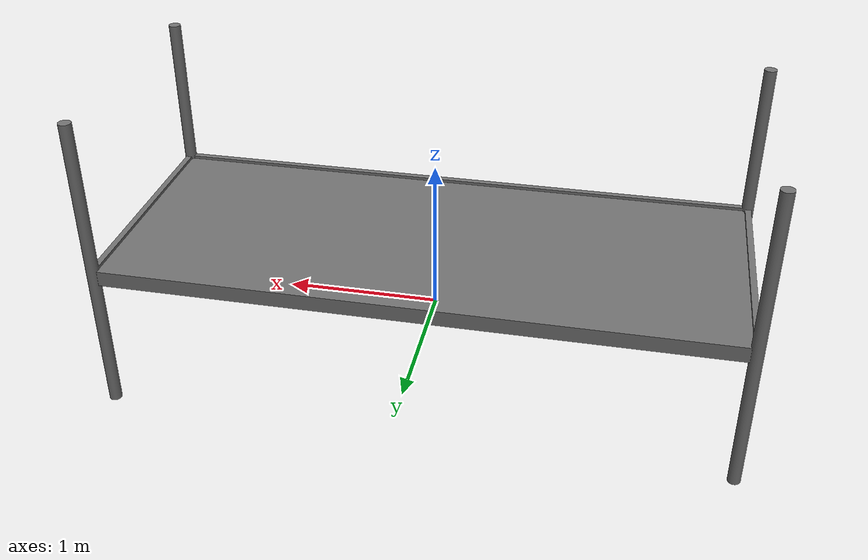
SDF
<?xml version="1.0" ?>
<sdf version="1.6">
  <model name="rack">
    <static>true</static>
    <link name="link">

      <visual name="visual">
        <pose>0 0 0 0 0 0</pose>
        <geometry>
          <mesh>
            <uri>./meshes/rack.stl</uri>
            <scale>1 1 1</scale>
          </mesh>
        </geometry>
        <material>
          <ambient>0.44 0.44 0.44 1</ambient>
          <diffuse>0.44 0.44 0.44 1</diffuse>
          <specular>0.1 0.1 0.1 1</specular>
        </material>
      </visual>

      <collision name="collision">
        <pose>0 0 0 0 0 0</pose>
        <geometry>
          <mesh>
            <uri>./meshes/rack.stl</uri>
            <scale>1 1 1</scale>
          </mesh>
        </geometry>
      </collision>

    </link>
  </model>
</sdf>
